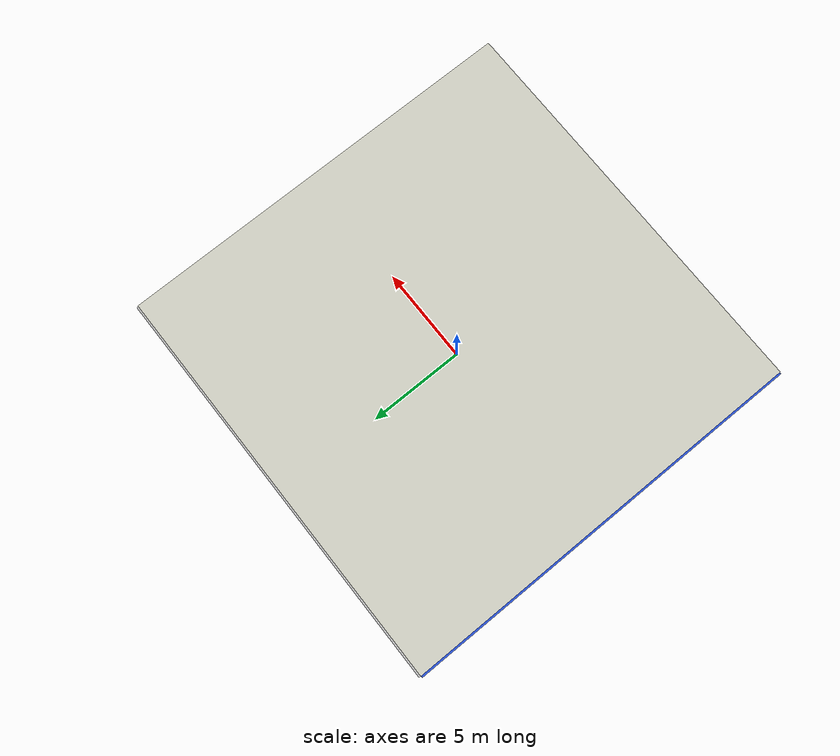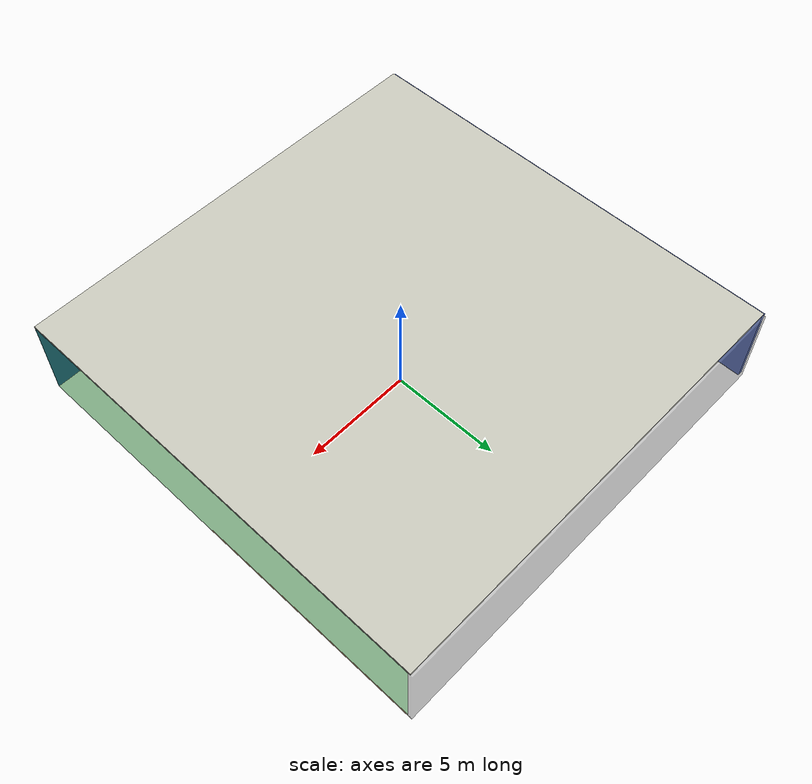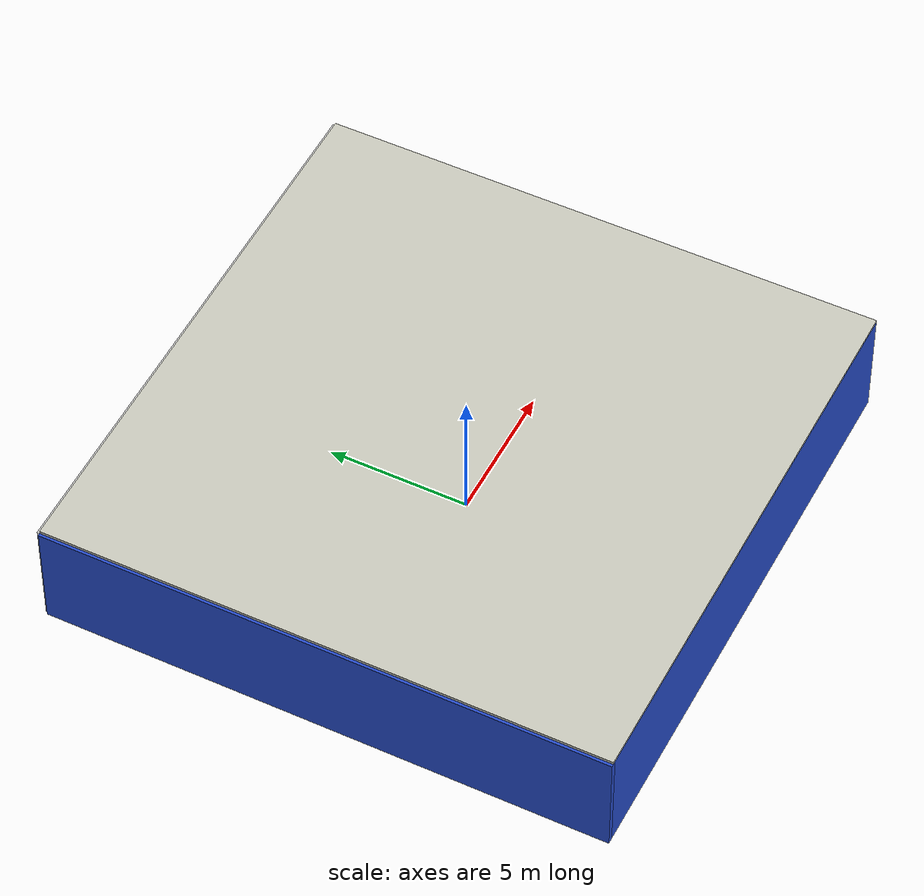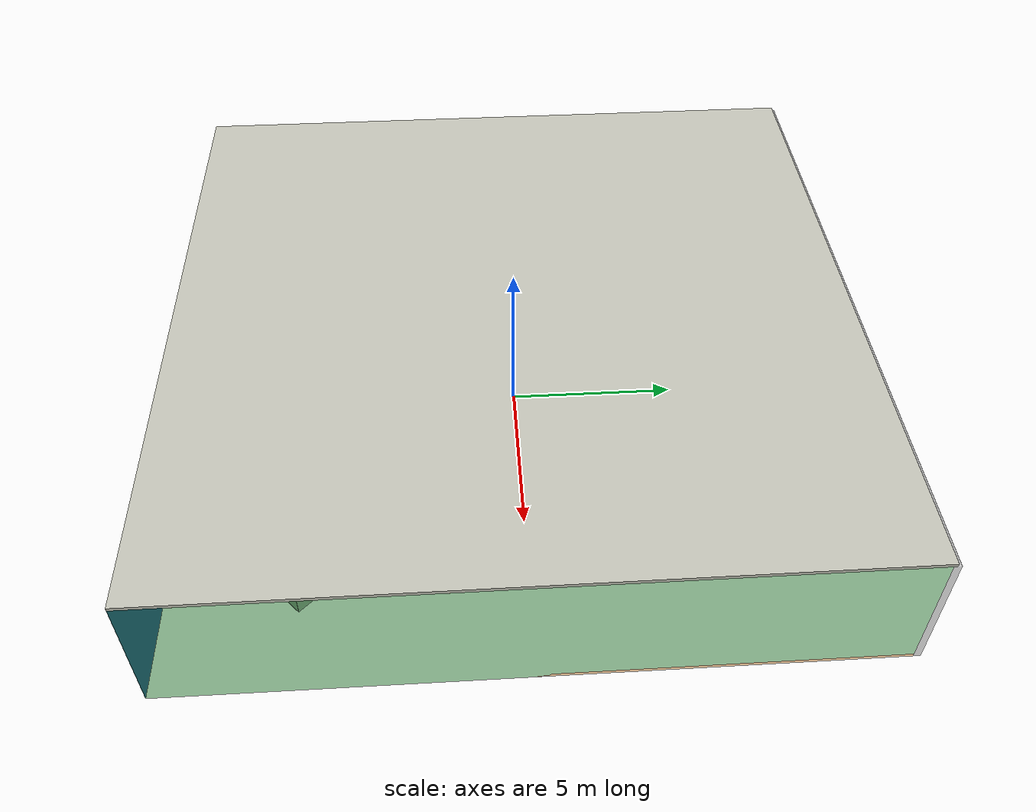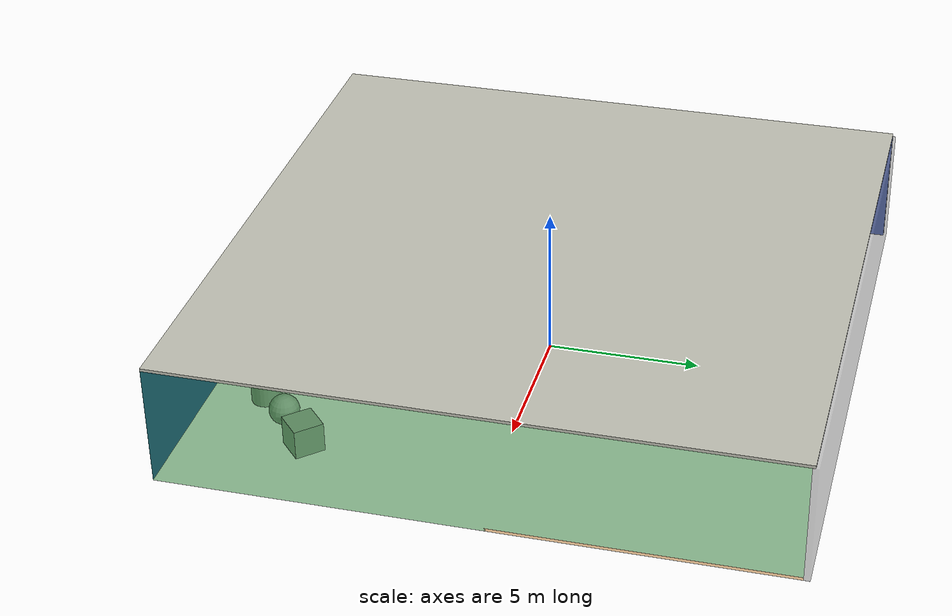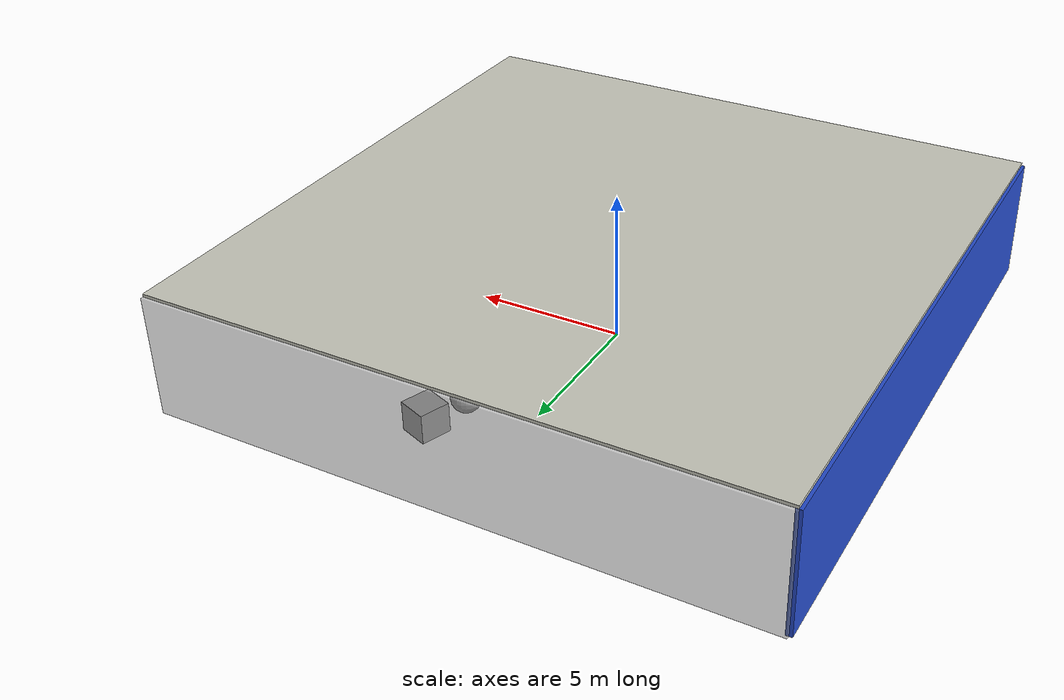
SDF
<sdf version="1.4">
 <world name="default">
  <physics type="ode">
   <max_step_size>0.001</max_step_size>
   <real_time_factor>1</real_time_factor>
   <real_time_update_rate>1000</real_time_update_rate>
   <gravity>0 0 -9.8</gravity>
  </physics>
  <scene><ambient>0.4 0.4 0.4 1</ambient><background>0.7 0.7 0.7 1</background><shadows>1</shadows></scene>
  <model name="Surrounding">
   <static>1</static>
   <link name="Ceiling">
    <collision name="Ceiling_Collision"><geometry><box><size>20 20 0.1</size></box></geometry></collision>
    <visual name="Ceiling_Visual">
     <geometry><box><size>20 20 0.1</size></box></geometry>
     <material>
      <script><uri>file://media/materials/scripts/gazebo.material</uri><name>Gazebo/PaintedWall</name></script>
     </material>
    </visual>
    <pose>0 0 4.05 0 0 0</pose>
   </link>
   <link name="Wall_South">
    <collision name="Wall_South_Collision">
     <geometry><box><size>20 0 4</size></box></geometry>
     <pose>0 0 2 0 -0 0</pose>
    </collision>
    <visual name="Wall_South_Visual">
     <pose>0 0 2 0 -0 0</pose>
     <geometry><box><size>20 0 4</size></box></geometry>
     <material>
      <script><uri>file://media/materials/scripts/gazebo.material</uri><name>Gazebo/Blue</name></script>
     </material>
    </visual>
    <velocity_decay><linear>0</linear><angular>0</angular></velocity_decay>
    <pose>0 -10 0 0 -0 0</pose>
   </link>
   <link name="Wall_East">
    <collision name="Wall_21_Collision">
     <geometry><box><size>20 0 4</size></box></geometry>
     <pose>0 0 2 0 -0 0</pose>
    </collision>
    <visual name="Wall_21_Visual">
     <pose>0 0 2 0 -0 0</pose>
     <geometry><box><size>20 0 4</size></box></geometry>
     <material>
      <script><uri>file://media/materials/scripts/gazebo.material</uri><name>Gazebo/GreenTransparent</name></script>
     </material>
    </visual>
    <velocity_decay><linear>0</linear><angular>0</angular></velocity_decay>
    <pose>10 0 0 0 -0 1.5708</pose>
   </link>
   <link name="Wall_North">
    <collision name="Wall_22_Collision">
     <geometry><box><size>20 0.2 4</size></box></geometry>
     <pose>0 0 2 0 -0 0</pose>
    </collision>
    <visual name="Wall_22_Visual">
     <pose>0 0 2 0 -0 0</pose>
     <geometry><box><size>20 0.2 4</size></box></geometry>
     <material>
      <script><uri>file://media/materials/scripts/gazebo.material</uri><name>Gazebo/GreyTransparent</name></script>
     </material>
    </visual>
    <velocity_decay><linear>0</linear><angular>0</angular></velocity_decay>
    <pose>0 10 0 0 -0 0</pose>
   </link>
   <link name="Wall_West">
    <collision name="Wall_23_Collision">
     <geometry><box><size>20 0.2 4</size></box></geometry>
     <pose>0 0 2 0 -0 0</pose>
    </collision>
    <visual name="Wall_23_Visual">
     <pose>0 0 2 0 -0 0</pose>
     <geometry><box><size>20 0.2 4</size></box></geometry>
     <material>
      <script><uri>file://media/materials/scripts/gazebo.material</uri><name>Gazebo/BlueLaser</name></script>
     </material>
    </visual>
    <velocity_decay><linear>0</linear><angular>0</angular></velocity_decay>
    <pose>-10 0 0 0 0 -1.5708</pose>
   </link>
   <link name="Ground_link">
    <collision name="collision">
     <pose>0 0 .05 0 -0 0</pose>
     <geometry><box><size>20 20 0.1</size></box></geometry>
    </collision>
    <visual name="visual">
     <pose>0 0 .05 0 -0 0</pose>
     <geometry><box><size>20 20 0.1</size></box></geometry>
     <material>
      <script>
       <uri>file://media/materials/scripts/gazebo.material</uri>
       <name>Gazebo/OrangeTransparent</name>
      </script>
     </material>
    </visual>
   </link>
   <static>1</static>
  </model>
  <spherical_coordinates>
   <surface_model>EARTH_WGS84</surface_model>
   <latitude_deg>0</latitude_deg>
   <longitude_deg>0</longitude_deg>
   <elevation>0</elevation>
   <heading_deg>0</heading_deg>
  </spherical_coordinates>
  <light name="lightball_0" type="diffuse">
   <diffuse>0.8 0.8 0.8 1</diffuse>
   <specular>0.2 0.2 0.2 1</specular>
   <attenuation>
    <range>100</range>
    <constant>0.7</constant>
    <linear>0.01</linear>
    <quadratic>0.001</quadratic>
   </attenuation>
   <direction>-0.5 0.1 -0.9</direction>
   <pose>0.0653868078411 -8.69987995267 2.74613721771 0 0 0</pose>
  </light>
  <light name="lightball_1" type="diffuse">
   <diffuse>0.8 0.8 0.8 1</diffuse>
   <specular>0.2 0.2 0.2 1</specular>
   <attenuation>
    <range>100</range>
    <constant>0.7</constant>
    <linear>0.01</linear>
    <quadratic>0.001</quadratic>
   </attenuation>
   <direction>-0.5 0.1 -0.9</direction>
   <pose>-0.148812208435 2.10125646681 2.77719934654 0 0 0</pose>
  </light>
  <light name="lightball_2" type="diffuse">
   <diffuse>0.8 0.8 0.8 1</diffuse>
   <specular>0.2 0.2 0.2 1</specular>
   <attenuation>
    <range>100</range>
    <constant>0.7</constant>
    <linear>0.01</linear>
    <quadratic>0.001</quadratic>
   </attenuation>
   <direction>-0.5 0.1 -0.9</direction>
   <pose>5.14102476177 0.728415882466 1.02928344384 0 0 0</pose>
  </light>
  <light name="lightball_3" type="diffuse">
   <diffuse>0.8 0.8 0.8 1</diffuse>
   <specular>0.2 0.2 0.2 1</specular>
   <attenuation>
    <range>100</range>
    <constant>0.7</constant>
    <linear>0.01</linear>
    <quadratic>0.001</quadratic>
   </attenuation>
   <direction>-0.5 0.1 -0.9</direction>
   <pose>-1.26032420328 -3.0097509513 2.09819830315 0 0 0</pose>
  </light>
  <light name="lightball_4" type="diffuse">
   <diffuse>0.8 0.8 0.8 1</diffuse>
   <specular>0.2 0.2 0.2 1</specular>
   <attenuation>
    <range>100</range>
    <constant>0.7</constant>
    <linear>0.01</linear>
    <quadratic>0.001</quadratic>
   </attenuation>
   <direction>-0.5 0.1 -0.9</direction>
   <pose>7.53029134877 6.1230979865 3.23691694092 0 0 0</pose>
  </light>
  <light name="lightball_5" type="diffuse">
   <diffuse>0.8 0.8 0.8 1</diffuse>
   <specular>0.2 0.2 0.2 1</specular>
   <attenuation>
    <range>100</range>
    <constant>0.7</constant>
    <linear>0.01</linear>
    <quadratic>0.001</quadratic>
   </attenuation>
   <direction>-0.5 0.1 -0.9</direction>
   <pose>-4.12192061644 -3.87609659537 1.90805041722 0 0 0</pose>
  </light>
  <include>
   <uri>model://robocup_3Dsim_goal</uri>
   <pose>-2.47368234358 -0.625708859626 0 0 0 0.61460184459</pose>
  </include>
  <include>
   <uri>model://textured_shapes</uri>
   <pose>2.44245860204 5.1883658895 0 0 0 2.78993991494</pose>
  </include>
  <include>
   <uri>model://textured_shapes</uri>
   <pose>5.5344189993 -7.38317087626 0 0 0 2.31884767928</pose>
  </include>
 </world>
</sdf>

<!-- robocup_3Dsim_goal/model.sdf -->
<sdf version="1.5">
  <model name="robocup_3d_goal">
    <static>true</static>
    <link name="left_post">
      <pose>0 1.05 0.45 0 0 0</pose>
      <collision name="collision">
        <geometry>
          <cylinder>
            <radius>0.05</radius>
            <length>0.9</length>
          </cylinder>
        </geometry>
      </collision>
      <visual name="visual">
        <geometry>
          <cylinder>
            <radius>0.05</radius>
            <length>0.9</length>
          </cylinder>
        </geometry>
        <material>
          <script>
            <uri>file://media/materials/scripts/gazebo.material</uri>
            <name>Gazebo/ZincYellow</name>
          </script>
        </material>
      </visual>
    </link>
    <link name="left_support_horiz_lower">
      <pose>0.30 1.05 0.01 0 0 0</pose>
      <collision name="collision">
        <geometry>
          <box>
            <size>0.50 0.02 0.02</size>
          </box>
        </geometry>
      </collision>
      <visual name="visual">
        <geometry>
          <box>
            <size>0.50 0.02 0.02</size>
          </box>
        </geometry>
        <material>
          <script>
            <uri>file://media/materials/scripts/gazebo.material</uri>
            <name>Gazebo/White</name>
          </script>
        </material>
      </visual>
    </link>
    <link name="left_support_horiz_upper">
      <pose>0.30 1.05 0.79 0 0 0</pose>
      <collision name="collision">
        <geometry>
          <box>
            <size>0.50 0.02 0.02</size>
          </box>
        </geometry>
      </collision>
      <visual name="visual">
        <geometry>
          <box>
            <size>0.50 0.02 0.02</size>
          </box>
        </geometry>
        <material>
          <script>
            <uri>file://media/materials/scripts/gazebo.material</uri>
            <name>Gazebo/White</name>
          </script>
        </material>
      </visual>
    </link>
    <link name="left_support_vertical">
      <pose>0.56 1.05 0.4 0 1.5708 0</pose>
      <collision name="collision">
        <geometry>
          <box>
            <size>0.80 0.02 0.02</size>
          </box>
        </geometry>
      </collision>
      <visual name="visual">
        <geometry>
          <box>
            <size>0.80 0.02 0.02</size>
          </box>
        </geometry>
        <material>
          <script>
            <uri>file://media/materials/scripts/gazebo.material</uri>
            <name>Gazebo/White</name>
          </script>
        </material>
      </visual>
    </link>
    <link name="right_support_horiz_lower">
      <pose>0.30 -1.05 0.01 0 0 0</pose>
      <collision name="collision">
        <geometry>
          <box>
            <size>0.50 0.02 0.02</size>
          </box>
        </geometry>
      </collision>
      <visual name="visual">
        <geometry>
          <box>
            <size>0.50 0.02 0.02</size>
          </box>
        </geometry>
        <material>
          <script>
            <uri>file://media/materials/scripts/gazebo.material</uri>
            <name>Gazebo/White</name>
          </script>
        </material>
      </visual>
    </link>
    <link name="right_support_horiz_upper">
      <pose>0.30 -1.05 0.79 0 0 0</pose>
      <collision name="collision">
        <geometry>
          <box>
            <size>0.50 0.02 0.02</size>
          </box>
        </geometry>
      </collision>
      <visual name="visual">
        <geometry>
          <box>
            <size>0.50 0.02 0.02</size>
          </box>
        </geometry>
        <material>
          <script>
            <uri>file://media/materials/scripts/gazebo.material</uri>
            <name>Gazebo/White</name>
          </script>
        </material>
      </visual>
    </link>
    <link name="right_support_vertical">
      <pose>0.56 -1.05 0.4 0 1.5708 0</pose>
      <collision name="collision">
        <geometry>
          <box>
            <size>0.80 0.02 0.02</size>
          </box>
        </geometry>
      </collision>
      <visual name="visual">
        <geometry>
          <box>
            <size>0.80 0.02 0.02</size>
          </box>
        </geometry>
        <material>
          <script>
            <uri>file://media/materials/scripts/gazebo.material</uri>
            <name>Gazebo/White</name>
          </script>
        </material>
      </visual>
    </link>
    <link name="center_support_horiz_lower">
      <pose>0.56 0 0.01 0 1.5708 0</pose>
      <collision name="collision">
        <geometry>
          <box>
            <size>0.02 2.08 0.02</size>
          </box>
        </geometry>
      </collision>
      <visual name="visual">
        <geometry>
          <box>
            <size>0.02 2.08 0.02</size>
          </box>
        </geometry>
        <material>
          <script>
            <uri>file://media/materials/scripts/gazebo.material</uri>
            <name>Gazebo/White</name>
          </script>
        </material>
      </visual>
    </link>
    <link name="center_support_horiz_upper">
      <pose>0.56 0 0.79 0 1.5708 0</pose>
      <collision name="collision">
        <geometry>
          <box>
            <size>0.02 2.08 0.02</size>
          </box>
        </geometry>
      </collision>
      <visual name="visual">
        <geometry>
          <box>
            <size>0.02 2.08 0.02</size>
          </box>
        </geometry>
        <material>
          <script>
            <uri>file://media/materials/scripts/gazebo.material</uri>
            <name>Gazebo/White</name>
          </script>
        </material>
      </visual>
    </link>
    <link name="right_post">
      <pose>0 -1.05 0.45 0 0 0</pose>
      <collision name="collision">
        <geometry>
          <cylinder>
            <radius>0.05</radius>
            <length>0.9</length>
          </cylinder>
        </geometry>
      </collision>
      <visual name="visual">
        <geometry>
          <cylinder>
            <radius>0.05</radius>
            <length>0.9</length>
          </cylinder>
        </geometry>
        <material>
          <script>
            <uri>file://media/materials/scripts/gazebo.material</uri>
            <name>Gazebo/ZincYellow</name>
          </script>
        </material>
      </visual>
    </link>
    <link name="crossbar">
      <pose>0 0 0.85 1.57 1.57 0</pose>
      <collision name="collision">
        <geometry>
          <cylinder>
            <radius>0.05</radius>
            <length>2.0</length>
          </cylinder>
        </geometry>
      </collision>
      <visual name="visual">
        <geometry>
          <cylinder>
            <radius>0.05</radius>
            <length>2.0</length>
          </cylinder>
        </geometry>
        <material>
          <script>
            <uri>file://media/materials/scripts/gazebo.material</uri>
            <name>Gazebo/ZincYellow</name>
          </script>
        </material>
      </visual>
    </link>
    <link name="center_net">
      <pose>0.56 0 0.40 0 0 0</pose>
      <collision name="collision">
        <geometry>
          <box>
            <size>0.01 2.1 0.80</size>
          </box>
        </geometry>
      </collision>
      <visual name="visual">
        <geometry>
          <box>
            <size>0.01 2.1 0.80</size>
          </box>
        </geometry>
        <material>
          <script>
            <uri>model://../model_source/models/robocup09_spl_field/materials/scripts/</uri>
            <uri>model://../model_source/models/robocup09_spl_field/materials/textures/</uri>
            <name>RoboCup/Net</name>
          </script>
        </material>
      </visual>
    </link>
    <link name="left_net">
      <pose>0.30 1.05 0.40 0 0 0</pose>
      <collision name="collision">
        <geometry>
          <box>
            <size>0.50 0.01 0.76</size>
          </box>
        </geometry>
      </collision>
      <visual name="visual">
        <geometry>
          <box>
            <size>0.50 0.01 0.76</size>
          </box>
        </geometry>
        <material>
          <script>
            <uri>model://../model_source/models/robocup09_spl_field/materials/scripts/</uri>
            <uri>model://../model_source/models/robocup09_spl_field/materials/textures/</uri>
            <name>RoboCup/Net</name>
          </script>
        </material>
      </visual>
    </link>
    <link name="right_net">
      <pose>0.30 -1.05 0.40 0 0 0</pose>
      <collision name="collision">
        <geometry>
          <box>
            <size>0.50 0.01 0.76</size>
          </box>
        </geometry>
      </collision>
      <visual name="visual">
        <geometry>
          <box>
            <size>0.50 0.01 0.76</size>
          </box>
        </geometry>
        <material>
          <script>
            <uri>model://../model_source/models/robocup09_spl_field/materials/scripts/</uri>
            <uri>model://../model_source/models/robocup09_spl_field/materials/textures/</uri>
            <name>RoboCup/Net</name>
          </script>
        </material>
      </visual>
    </link>
  </model>
</sdf>

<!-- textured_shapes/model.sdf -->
<sdf version="1.6">
  <model name="textured_shapes">
    <pose>0 0 0.5 0 0 0</pose>
    <link name="box">
      <pose>0 -1.5 0 0 0 0</pose>
      <collision name="collision">
        <geometry>
          <box>
            <size>1 1 1</size>
          </box>
        </geometry>
      </collision>
      <visual name="visual">
        <geometry>
          <box>
            <size>1 1 1</size>
          </box>
        </geometry>
        <material>
          <script>
            <uri>model://../model_source/models/textured_shapes/materials/scripts</uri>
            <uri>model://../model_source/models/textured_shapes/materials/textures</uri>
            <name>TexturedShape/Squares</name>
          </script>
        </material>
      </visual>
    </link>
    <link name="sphere">
      <collision name="collision">
        <geometry>
          <sphere>
            <radius>0.5</radius>
          </sphere>
        </geometry>
      </collision>
      <visual name="visual">
        <geometry>
          <sphere>
            <radius>0.5</radius>
          </sphere>
        </geometry>
        <material>
          <script>
            <uri>model://../model_source/models/textured_shapes/materials/scripts</uri>
            <uri>model://../model_source/models/textured_shapes/materials/textures</uri>
            <name>TexturedShape/Squares</name>
          </script>
        </material>
      </visual>
    </link>
    <link name="cylinder">
      <pose>0 1.5 0 0 0 0</pose>
      <collision name="collision">
        <geometry>
          <cylinder>
            <radius>0.5</radius>
            <length>1</length>
          </cylinder>
        </geometry>
      </collision>
      <visual name="visual">
        <geometry>
          <cylinder>
            <radius>0.5</radius>
            <length>1</length>
          </cylinder>
        </geometry>
        <material>
          <script>
            <uri>model://../model_source/models/textured_shapes/materials/scripts</uri>
            <uri>model://../model_source/models/textured_shapes/materials/textures</uri>
            <name>TexturedShape/Squares</name>
          </script>
        </material>
      </visual>
    </link>
  </model>
</sdf>
